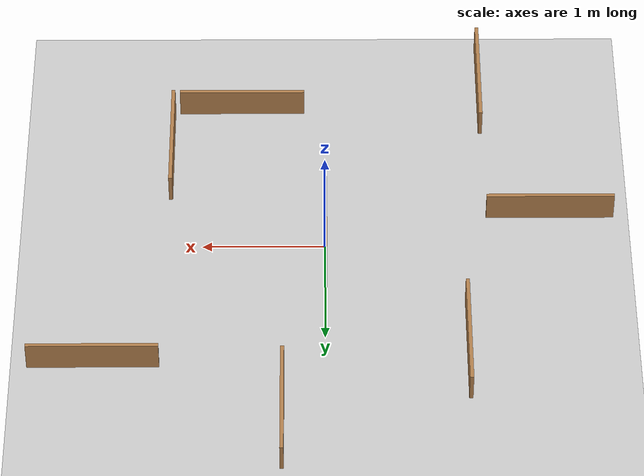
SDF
<?xml version="1.0"?>
<sdf version="1.4">
<model name="navigation">
  <static>true</static>
    <link name="floor">
      <collision name="collision">
        <geometry>
          <plane>
            <normal>0 0 1</normal>
            <size>5.0 5.0</size>
          </plane>
        </geometry>
        <surface>
          <friction>
            <ode>
              <mu>100</mu>
              <mu2>50</mu2>
            </ode>
          </friction>
        </surface>
      </collision>
      <visual name="visual">
        <cast_shadows>false</cast_shadows>
        <geometry>
          <plane>
            <normal>0 0 1</normal>
            <size>5.0 5.0</size>
          </plane>
        </geometry>
        <material>
          <script>
            <uri>model://navigation/materials/scripts</uri>
            <uri>model://navigation/materials/textures</uri>
            <name>navigationFloor/Image</name>
          </script>
        </material>
      </visual>
    </link>
    <link name='wall_1'>
      <pose frame=''>0.34413 1.83641 0.125 0 0 0</pose>
      <collision name='coll'>
        <geometry>
          <box>
            <size>0.03 1.05 0.25</size>
          </box>
        </geometry>
      </collision>
      <visual name='vis'>
        <geometry>
          <box>
            <size>0.03 1.05 0.25</size>
          </box>
        </geometry>
        <material>
          <script>
            <uri>file://media/materials/scripts/gazebo.material</uri>
            <name>Gazebo/Wood</name>
          </script>
        </material>
      </visual>
    </link>
    <link name='wall_2'>
      <pose frame=''>1.84412 1.29641 0.125 0 0 0</pose>
      <collision name='coll'>
        <geometry>
          <box>
            <size>1.05 0.03 0.25</size>
          </box>
        </geometry>
      </collision>
      <visual name='vis'>
        <geometry>
          <box>
            <size>1.05 0.03 0.25</size>
          </box>
        </geometry>
        <material>
          <script>
            <uri>file://media/materials/scripts/gazebo.material</uri>
            <name>Gazebo/Wood</name>
          </script>
        </material>
      </visual>
    </link>
    <link name='wall_3'>
      <pose frame=''>-1.14124 1.12333 0.125 0 0 0</pose>
      <collision name='coll'>
        <geometry>
          <box>
            <size>0.03 1.05 0.25</size>
          </box>
        </geometry>
      </collision>
      <visual name='vis'>
        <geometry>
          <box>
            <size>0.03 1.05 0.25</size>
          </box>
        </geometry>
        <material>
          <script>
            <uri>file://media/materials/scripts/gazebo.material</uri>
            <name>Gazebo/Wood</name>
          </script>
        </material>
      </visual>
    </link>
    <link name='wall_4'>
      <pose frame=''>0 -0.04072 0.125 0 0 0</pose>
      <collision name='coll'>
        <geometry>
          <box>
            <size>0.03 1.05 0.25</size>
          </box>
        </geometry>
      </collision>
      <visual name='vis'>
        <geometry>
          <box>
            <size>0.03 1.05 0.25</size>
          </box>
        </geometry>
        <material>
          <script>
            <uri>file://media/materials/scripts/gazebo.material</uri>
            <name>Gazebo/Wood</name>
          </script>
        </material>
      </visual>
    </link>
    <link name='wall_5'>
      <pose frame=''>-1.85277 -0.34134 0.125 0 0 0</pose>
      <collision name='coll'>
        <geometry>
          <box>
            <size>1.05 0.03 0.25</size>
          </box>
        </geometry>
      </collision>
      <visual name='vis'>
        <geometry>
          <box>
            <size>1.05 0.03 0.25</size>
          </box>
        </geometry>
        <material>
          <script>
            <uri>file://media/materials/scripts/gazebo.material</uri>
            <name>Gazebo/Wood</name>
          </script>
        </material>
      </visual>
    </link>
    <link name='wall_6'>
      <pose frame=''>1.27590 -1.07230 0.125 0 0 0</pose>
      <collision name='coll'>
        <geometry>
          <box>
            <size>0.03 1.05 0.25</size>
          </box>
        </geometry>
      </collision>
      <visual name='vis'>
        <geometry>
          <box>
            <size>0.03 1.05 0.25</size>
          </box>
        </geometry>
        <material>
          <script>
            <uri>file://media/materials/scripts/gazebo.material</uri>
            <name>Gazebo/Wood</name>
          </script>
        </material>
      </visual>
    </link>
    <link name='wall_7'>
      <pose frame=''>0.69590 -1.58230 0.125 0 0 0</pose>
      <collision name='coll'>
        <geometry>
          <box>
            <size>1.05 0.03 0.25</size>
          </box>
        </geometry>
      </collision>
      <visual name='vis'>
        <geometry>
          <box>
            <size>1.05 0.03 0.25</size>
          </box>
        </geometry>
        <material>
          <script>
            <uri>file://media/materials/scripts/gazebo.material</uri>
            <name>Gazebo/Wood</name>
          </script>
        </material>
      </visual>
    </link>
    <link name='wall_8'>
      <pose frame=''>-1.31277 -1.84133 0.125 0 0 0</pose>
      <collision name='coll'>
        <geometry>
          <box>
            <size>0.03 1.05 0.25</size>
          </box>
        </geometry>
      </collision>
      <visual name='vis'>
        <geometry>
          <box>
            <size>0.03 1.05 0.25</size>
          </box>
        </geometry>
        <material>
          <script>
            <uri>file://media/materials/scripts/gazebo.material</uri>
            <name>Gazebo/Wood</name>
          </script>
        </material>
      </visual>
    </link>
  </model>
</sdf>
